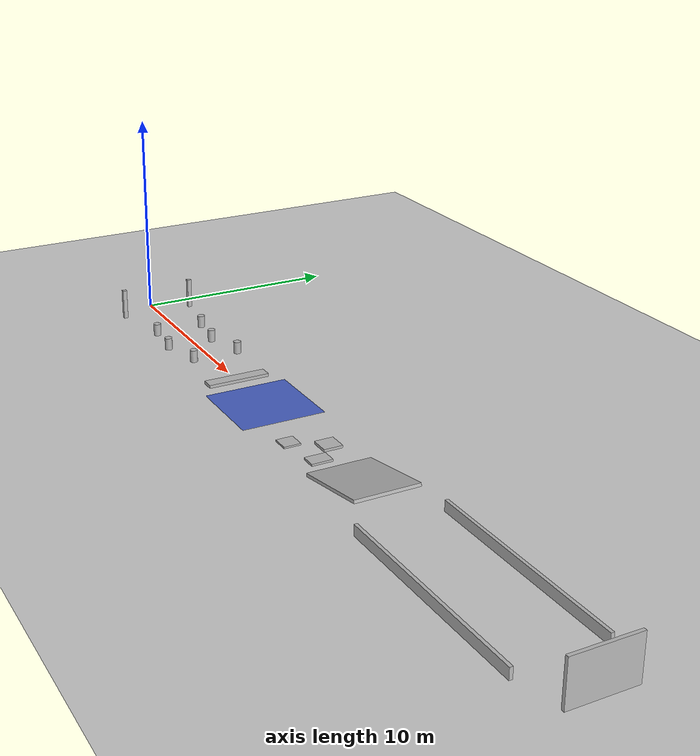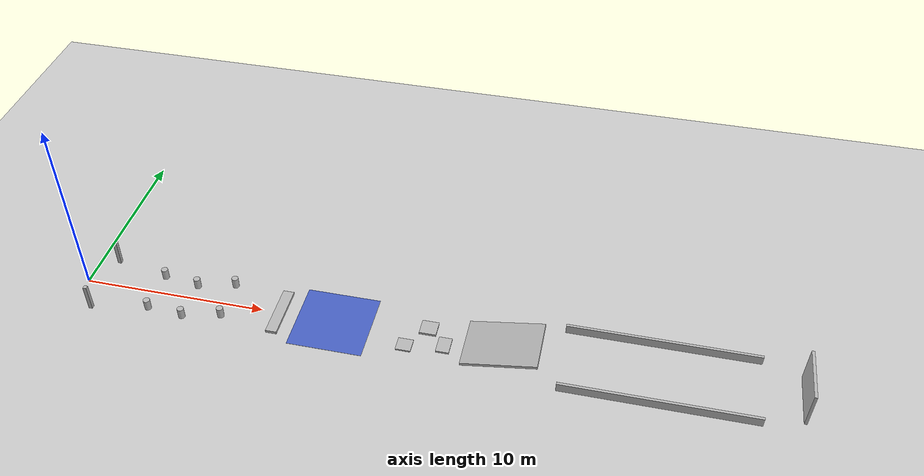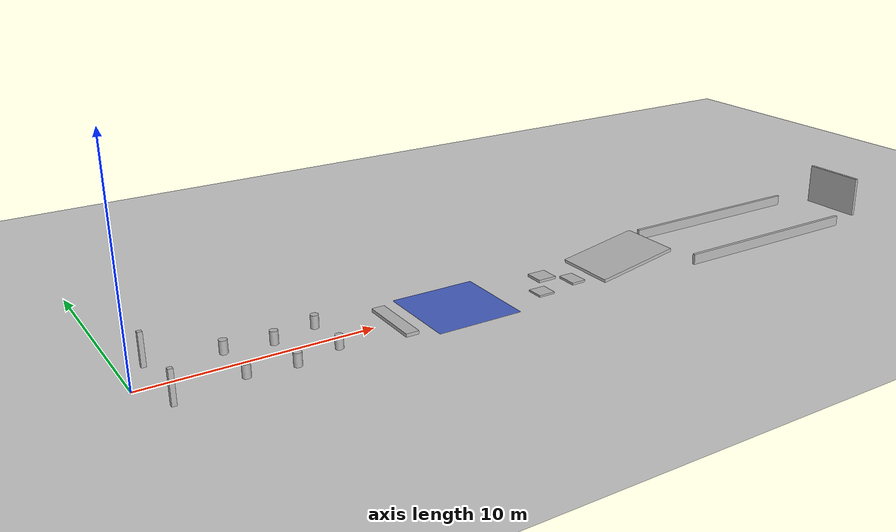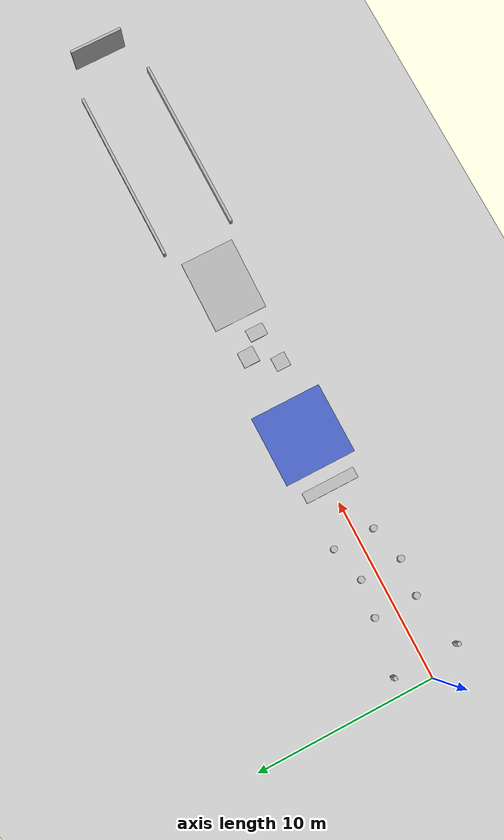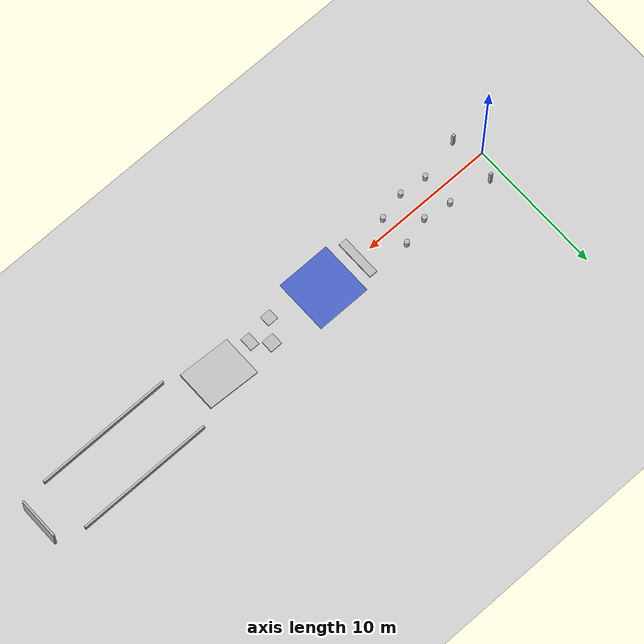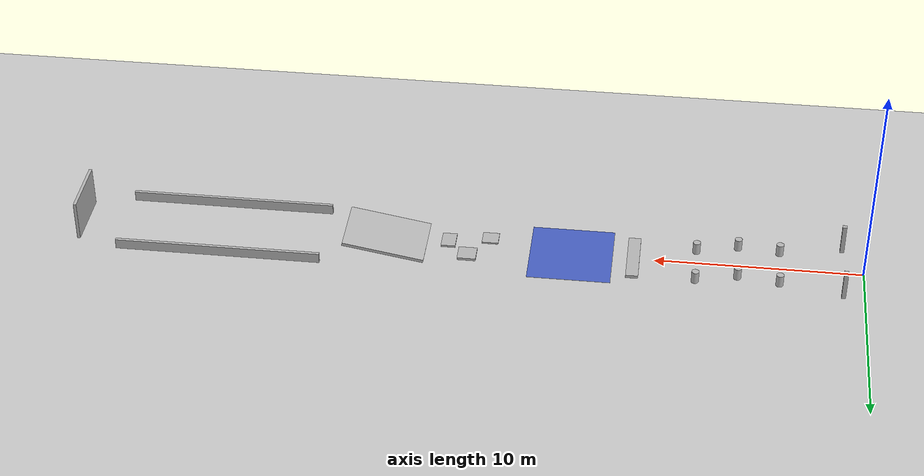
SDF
<?xml version="1.0"?>

<sdf version="1.6">

  <world name="evrenos_competition_world">

    <!-- PHYSICS                                           -->

    <physics name="default_physics" type="ode">
      <max_step_size>0.001</max_step_size>
      <real_time_factor>1.0</real_time_factor>
      <real_time_update_rate>1000</real_time_update_rate>
    </physics>

    <include>
      <uri>model://sun</uri>
    </include>

    <include>
      <uri>model://ground_plane</uri>
    </include>

    <!-- START GATE                                        -->

    <model name="start_left">
      <static>true</static>
      <pose>1 1.8 0.75 0 0 0</pose>

      <link name="link">
        <collision name="collision">
          <geometry>
            <box>
              <size>0.20 0.20 1.50</size>
            </box>
          </geometry>
        </collision>

        <visual name="visual">
          <geometry>
            <box>
              <size>0.20 0.20 1.50</size>
            </box>
          </geometry>
        </visual>
      </link>
    </model>

    <model name="start_right">
      <static>true</static>
      <pose>1 -1.8 0.75 0 0 0</pose>

      <link name="link">
        <collision name="collision">
          <geometry>
            <box>
              <size>0.20 0.20 1.50</size>
            </box>
          </geometry>
        </collision>

        <visual name="visual">
          <geometry>
            <box>
              <size>0.20 0.20 1.50</size>
            </box>
          </geometry>
        </visual>
      </link>
    </model>

    <!-- CONE SECTION                                      -->

    <model name="cone_l1">
      <static>true</static>
      <pose>4 1.2 0.30 0 0 0</pose>
      <link name="link">
        <collision name="collision">
          <geometry>
            <cylinder>
              <radius>0.18</radius>
              <length>0.60</length>
            </cylinder>
          </geometry>
        </collision>
        <visual name="visual">
          <geometry>
            <cylinder>
              <radius>0.18</radius>
              <length>0.60</length>
            </cylinder>
          </geometry>
        </visual>
      </link>
    </model>

    <model name="cone_r1">
      <static>true</static>
      <pose>4 -1.2 0.30 0 0 0</pose>
      <link name="link">
        <collision name="collision">
          <geometry>
            <cylinder>
              <radius>0.18</radius>
              <length>0.60</length>
            </cylinder>
          </geometry>
        </collision>
        <visual name="visual">
          <geometry>
            <cylinder>
              <radius>0.18</radius>
              <length>0.60</length>
            </cylinder>
          </geometry>
        </visual>
      </link>
    </model>

    <model name="cone_l2">
      <static>true</static>
      <pose>6 0.9 0.30 0 0 0</pose>
      <link name="link">
        <collision name="collision">
          <geometry>
            <cylinder>
              <radius>0.18</radius>
              <length>0.60</length>
            </cylinder>
          </geometry>
        </collision>
        <visual name="visual">
          <geometry>
            <cylinder>
              <radius>0.18</radius>
              <length>0.60</length>
            </cylinder>
          </geometry>
        </visual>
      </link>
    </model>

    <model name="cone_r2">
      <static>true</static>
      <pose>6 -1.4 0.30 0 0 0</pose>
      <link name="link">
        <collision name="collision">
          <geometry>
            <cylinder>
              <radius>0.18</radius>
              <length>0.60</length>
            </cylinder>
          </geometry>
        </collision>
        <visual name="visual">
          <geometry>
            <cylinder>
              <radius>0.18</radius>
              <length>0.60</length>
            </cylinder>
          </geometry>
        </visual>
      </link>
    </model>

    <model name="cone_l3">
      <static>true</static>
      <pose>8 1.4 0.30 0 0 0</pose>
      <link name="link">
        <collision name="collision">
          <geometry>
            <cylinder>
              <radius>0.18</radius>
              <length>0.60</length>
            </cylinder>
          </geometry>
        </collision>
        <visual name="visual">
          <geometry>
            <cylinder>
              <radius>0.18</radius>
              <length>0.60</length>
            </cylinder>
          </geometry>
        </visual>
      </link>
    </model>

    <model name="cone_r3">
      <static>true</static>
      <pose>8 -0.9 0.30 0 0 0</pose>
      <link name="link">
        <collision name="collision">
          <geometry>
            <cylinder>
              <radius>0.18</radius>
              <length>0.60</length>
            </cylinder>
          </geometry>
        </collision>
        <visual name="visual">
          <geometry>
            <cylinder>
              <radius>0.18</radius>
              <length>0.60</length>
            </cylinder>
          </geometry>
        </visual>
      </link>
    </model>

    <!-- VERTICAL OBSTACLE                                 -->

    <model name="vertical_obstacle">
      <static>true</static>

      <pose>11 0 0.075 0 0 0</pose>

      <link name="link">

        <collision name="collision">
          <geometry>
            <box>
              <size>0.60 3.0 0.15</size>
            </box>
          </geometry>
        </collision>

        <visual name="visual">
          <geometry>
            <box>
              <size>0.60 3.0 0.15</size>
            </box>
          </geometry>
        </visual>

      </link>
    </model>

    <!-- WATER SECTION                                     -->
    <!-- Visual only for now                               -->

    <model name="water_zone">
      <static>true</static>

      <pose>14 0 0.01 0 0 0</pose>

      <link name="link">

        <visual name="visual">

          <geometry>
            <box>
              <size>4.0 4.0 0.02</size>
            </box>
          </geometry>

          <material>
            <ambient>0.05 0.2 0.8 0.65</ambient>
            <diffuse>0.05 0.2 0.8 0.65</diffuse>
          </material>

        </visual>

      </link>
    </model>

    <!-- ROUGH TERRAIN                                     -->

    <model name="rough_1">
      <static>true</static>
      <pose>18 -0.8 0.04 0 0 0</pose>
      <link name="link">
        <collision name="collision">
          <geometry>
            <box><size>0.8 0.8 0.08</size></box>
          </geometry>
        </collision>
        <visual name="visual">
          <geometry>
            <box><size>0.8 0.8 0.08</size></box>
          </geometry>
        </visual>
      </link>
    </model>

    <model name="rough_2">
      <static>true</static>
      <pose>19 0.6 0.06 0 0 0</pose>
      <link name="link">
        <collision name="collision">
          <geometry>
            <box><size>0.9 0.9 0.12</size></box>
          </geometry>
        </collision>
        <visual name="visual">
          <geometry>
            <box><size>0.9 0.9 0.12</size></box>
          </geometry>
        </visual>
      </link>
    </model>

    <model name="rough_3">
      <static>true</static>
      <pose>20 -0.4 0.05 0 0 0</pose>
      <link name="link">
        <collision name="collision">
          <geometry>
            <box><size>0.7 1.0 0.10</size></box>
          </geometry>
        </collision>
        <visual name="visual">
          <geometry>
            <box><size>0.7 1.0 0.10</size></box>
          </geometry>
        </visual>
      </link>
    </model>

    <!-- UPHILL RAMP                                       -->

    <model name="slope">

      <static>true</static>

      <!-- ~10 degree incline -->
      <pose>23 0 0.43 0 -0.1745 0</pose>

      <link name="link">

        <collision name="collision">
          <geometry>
            <box>
              <size>4.0 3.0 0.15</size>
            </box>
          </geometry>
        </collision>

        <visual name="visual">
          <geometry>
            <box>
              <size>4.0 3.0 0.15</size>
            </box>
          </geometry>
        </visual>

      </link>

    </model>

    <!-- ACCELERATION CORRIDOR                             -->

    <model name="accel_left_wall">
      <static>true</static>

      <pose>31 2.0 0.25 0 0 0</pose>

      <link name="link">
        <collision name="collision">
          <geometry>
            <box><size>10 0.15 0.5</size></box>
          </geometry>
        </collision>

        <visual name="visual">
          <geometry>
            <box><size>10 0.15 0.5</size></box>
          </geometry>
        </visual>
      </link>
    </model>

    <model name="accel_right_wall">
      <static>true</static>

      <pose>31 -2.0 0.25 0 0 0</pose>

      <link name="link">
        <collision name="collision">
          <geometry>
            <box><size>10 0.15 0.5</size></box>
          </geometry>
        </collision>

        <visual name="visual">
          <geometry>
            <box><size>10 0.15 0.5</size></box>
          </geometry>
        </visual>
      </link>
    </model>

    <!-- TARGET AREA                                       -->

    <model name="target_wall">

      <static>true</static>

      <pose>38 0 1.0 0 0 0</pose>

      <link name="link">

        <collision name="collision">
          <geometry>
            <box>
              <size>0.15 3.0 2.0</size>
            </box>
          </geometry>
        </collision>

        <visual name="visual">
          <geometry>
            <box>
              <size>0.15 3.0 2.0</size>
            </box>
          </geometry>
        </visual>

      </link>

    </model>

  </world>

</sdf>
